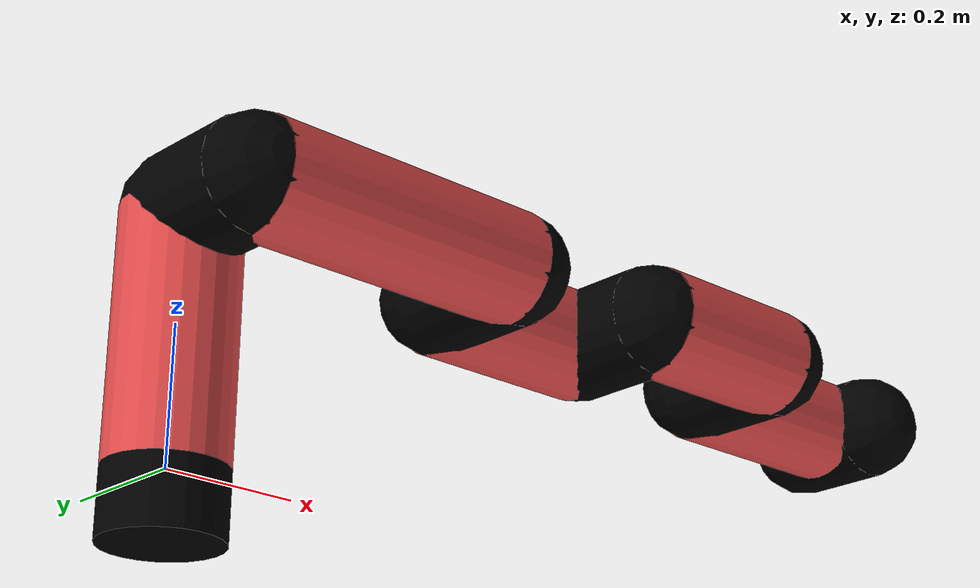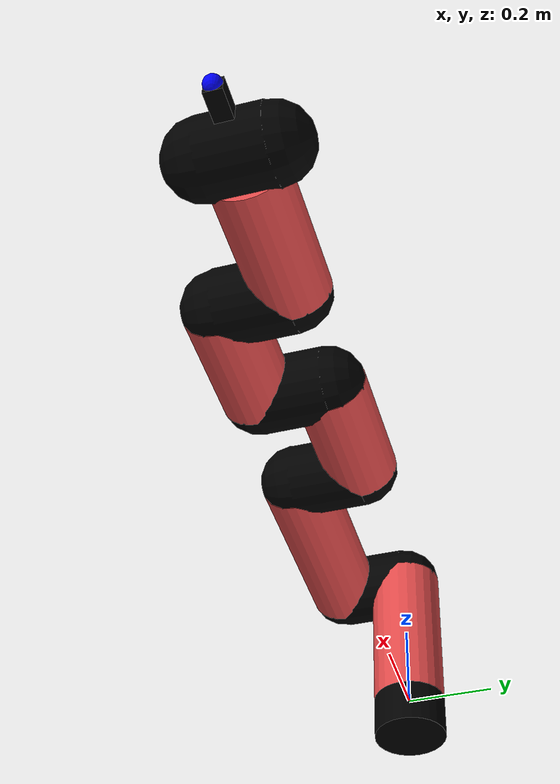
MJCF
<mujoco model="manipulator">
		<compiler angle="degree" coordinate="local" inertiafromgeom="auto" meshdir="meshes/"/>
		<option gravity="0 0 0" integrator="RK4" iterations="30" timestep="0.01"/>

		<default>
		<joint armature="1" limited="true" stiffness="10" damping="15" frictionloss="5.0"/>
		<geom conaffinity="1" condim="3" contype="1" friction=".5 .1 .1" margin="0.002"/>
		<motor ctrllimited="true"/>
		<position ctrllimited="true"/>
		</default>

		<asset>
		<texture builtin="gradient" height="100" rgb1="1.0 1.0 1.0" rgb2="1.0 1.0 1.0" type="skybox" width="100"/>
		<texture builtin="flat" height="32" name="arm_tex" rgb1="0.9 0.3 0.3" type="2d" width="32"/>
		<texture builtin="flat" height="32" name="gripper_tex" rgb1="0.0 0.0 0.0" type="cube" width="32"/>

		<material name="arm_mat" shininess="0.1" specular="0.1" texture="arm_tex"/>
		<material name="gripper_mat" shininess="1" specular="1" texture="gripper_tex"/>
		</asset>

		<worldbody>
		<light cutoff="45" diffuse=".8 .8 .8" dir="0 0.16 -1" directional="false" name="light" pos="0 -2.0 8.0" specular="0.3 0.3 0.3"/>

		<body name="base_link" pos="0 0 -0.1">
		<geom fromto="0 0 0 0 0 0.1" material="arm_mat" name="base_link" rgba="0.0 0.0 0.0 1" size="0.085" type="cylinder"/>
		</body>

		<body name="l1" pos="0 0 0">
<geom fromto="0 0 0 0 0 0.36" material="arm_mat" name="l1" rgba="0.9 0.3 0.3 1" size="0.085" type="cylinder"/>
<geom fromto="0 0 0.36 0 -0.16 0.36" material="arm_mat" name="l1_ex" rgba="0.0 0.0 0.0 1" size="0.085" type="capsule"/>
<joint axis="0 0 1" name="j1" pos="0 0 0" range="-90 90" damping="37.14" frictionloss="11.61"/>

<body name="l2" pos="0 -0.16 0.36">
<geom fromto="0 0 0 0.45 0 0" material="arm_mat" name="l2" rgba="0.9 0.3 0.3 1" size="0.085" type="cylinder"/>
<geom fromto="0.45 0 0 0.45 0.16 0" material="arm_mat" name="l2_ex" rgba="0.0 0.0 0.0 1" size="0.085" type="capsule"/>
<joint axis="0.0 1.0 0.0" name="j2" pos="0 0 0" range="-90 60" damping="36.39" frictionloss="11.8"/>

<body name="l3" pos="0.45 0.16 0">
<geom fromto="0 0 0 0.29 0 0" material="arm_mat" name="l3" rgba="0.9 0.3 0.3 1" size="0.085" type="cylinder"/>
<geom fromto="0.29 0 0 0.29 -0.16 0" material="arm_mat" name="l3_ex" rgba="0.0 0.0 0.0 1" size="0.085" type="capsule"/>
<joint axis="0.0 1.0 0.0" name="j3" pos="0 0 0" range="-30 60" damping="27.96" frictionloss="11.24"/>

<body name="l4" pos="0.29 -0.16 0">
<geom fromto="0 0 0 0.27 0 0" material="arm_mat" name="l4" rgba="0.9 0.3 0.3 1" size="0.085" type="cylinder"/>
<geom fromto="0.27 0 0 0.27 0.16 0" material="arm_mat" name="l4_ex" rgba="0.0 0.0 0.0 1" size="0.085" type="capsule"/>
<joint axis="0.0 1.0 0.0" name="j4" pos="0 0 0" range="-30 60" damping="33.75" frictionloss="11.93"/>

<body name="l5" pos="0.27 0.16 0">
<geom fromto="0 0 0 0.31 0 0" material="arm_mat" name="l5" rgba="0.9 0.3 0.3 1" size="0.085" type="cylinder"/>
<joint axis="0.0 1.0 0.0" name="j5" pos="0 0 0" range="-30 60" damping="32.45" frictionloss="11.86"/>

<body name="gripper" pos="0.31 0 0">
<geom fromto="0.05 -0.07 0 0.05 0.07 0" material="gripper_mat" name="gripper" rgba="0.0 0.0 0.0 1" size="0.085" type="capsule"/><joint axis="1 0 0" name="j6" pos="0 0 0" range="-90 90" damping="15" frictionloss="5.0"/><body name="finger" pos="0.1 0 0">
<geom fromto="0 0.0 0 0.1 0.0 0" material="gripper_mat" name="finger" rgba="0.0 0.0 0.0 1" size="0.020 0.06 0.06" type="box"/>
</body>
<site name="current" pos="0.2 0. 0.0" rgba="0. 0. 1.0 1" size="0.02" type="sphere"/>
</body>
</body>
</body>
</body>
</body>
</body>
</worldbody>
<actuator>
<motor ctrllimited="true" ctrlrange="-1.0 1.0" joint="j1" gear="63.01"/>
<motor ctrllimited="true" ctrlrange="-1.0 1.0" joint="j2" gear="65.33"/>
<motor ctrllimited="true" ctrlrange="-1.0 1.0" joint="j3" gear="61.15"/>
<motor ctrllimited="true" ctrlrange="-1.0 1.0" joint="j4" gear="61.63"/>
<motor ctrllimited="true" ctrlrange="-1.0 1.0" joint="j5" gear="76.98"/>
<motor ctrllimited="true" ctrlrange="-1.0 1.0" joint="j6" gear="80"/>
</actuator>
</mujoco>
